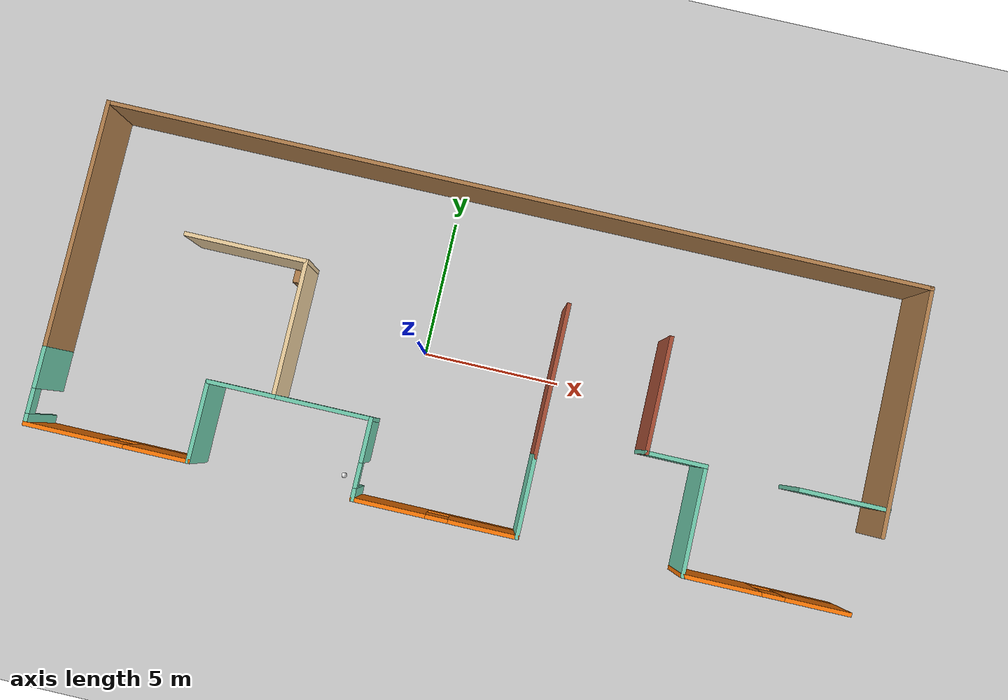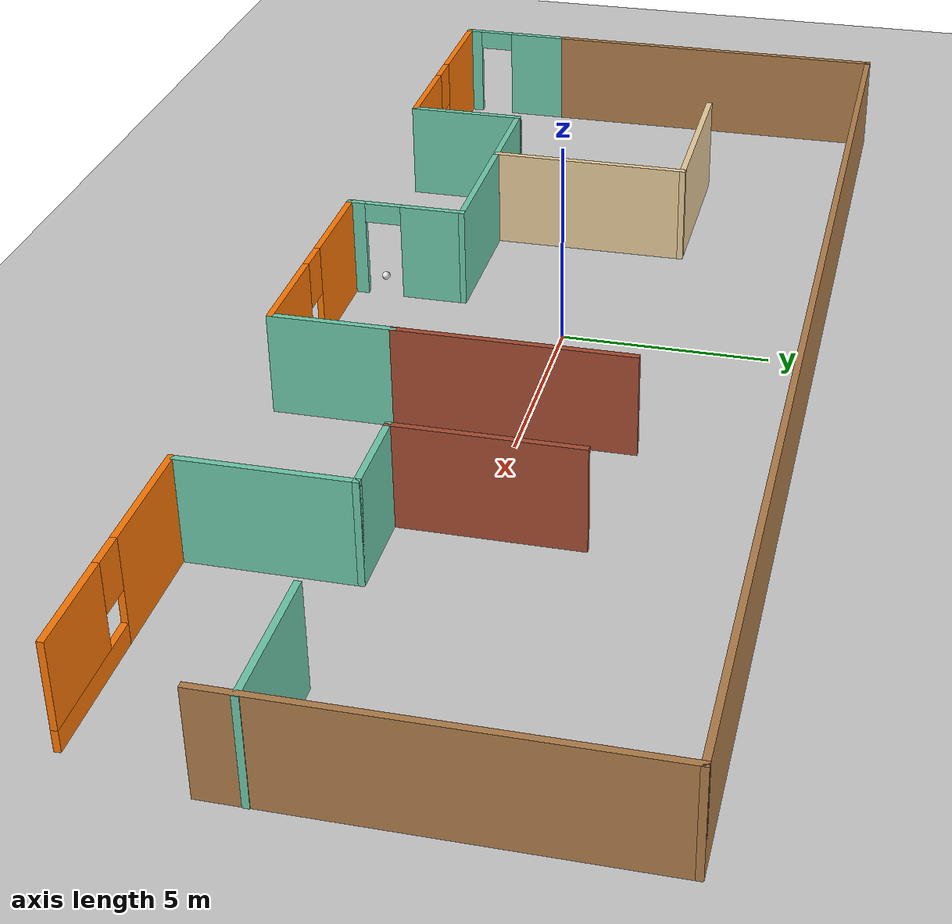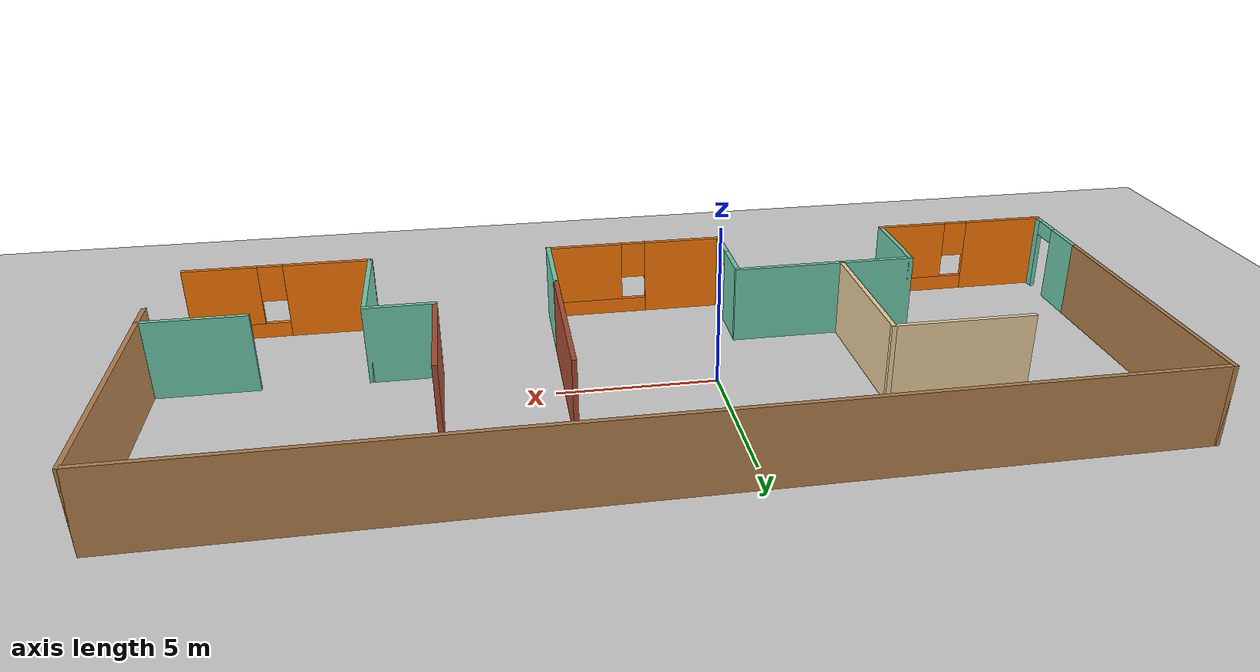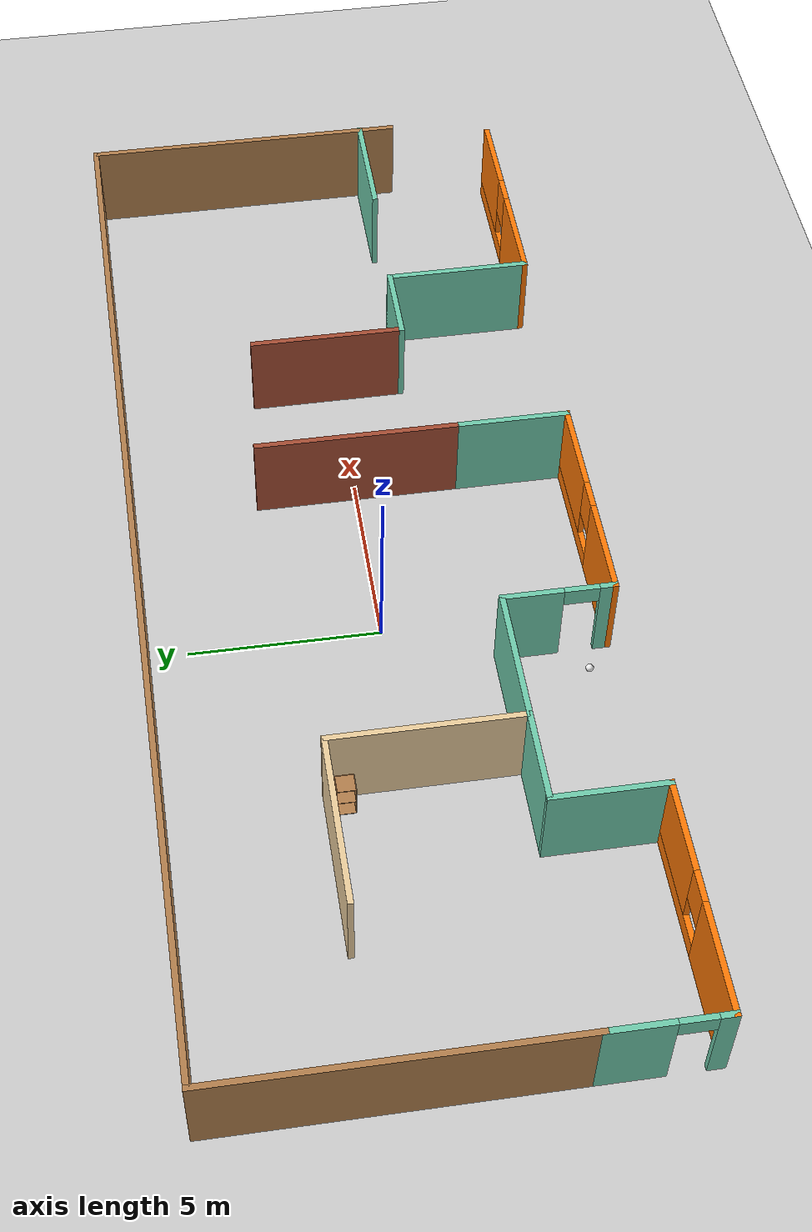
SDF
<sdf version="1.7">
 <world name="default">
  <model name="ground_plane">
   <static>1</static>
   <link name="link">
    <collision name="collision">
     <geometry><plane><normal>0 0 1</normal><size>100 100</size></plane></geometry>
     <surface>
      <contact><collide_bitmask>65535</collide_bitmask></contact>
      <friction><ode><mu>100</mu><mu2>50</mu2></ode></friction>
     </surface>
    </collision>
    <visual name="visual">
     <cast_shadows>0</cast_shadows>
     <geometry><plane><normal>0 0 1</normal><size>100 100</size></plane></geometry>
     <material>
      <script><uri>file://media/materials/scripts/gazebo.material</uri><name>Gazebo/Grey</name></script>
     </material>
    </visual>
   </link>
  </model>
  <model name="model_0">
   <pose>2.038 0.20634 0 0 -0 0</pose>
   <link name="Wall_22">
    <collision name="Wall_22_Collision">
     <geometry><box><size>9 0.15 2.5</size></box></geometry>
     <pose>0 0 1.25 0 -0 0</pose>
    </collision>
    <visual name="Wall_22_Visual">
     <pose>0 0 1.25 0 -0 0</pose>
     <geometry><box><size>9 0.15 2.5</size></box></geometry>
     <material>
      <script><uri>file://media/materials/scripts/gazebo.material</uri><name>Gazebo/Wood</name></script>
      <ambient>1 1 1 1</ambient>
     </material>
     <meta><layer>0</layer></meta>
    </visual>
    <pose>-14.9327 1.425 0 0 -0 1.5708</pose>
   </link>
   <link name="Wall_23">
    <collision name="Wall_23_Collision">
     <geometry><box><size>30 0.15 2.5</size></box></geometry>
     <pose>0 0 1.25 0 -0 0</pose>
    </collision>
    <visual name="Wall_23_Visual">
     <pose>0 0 1.25 0 -0 0</pose>
     <geometry><box><size>30 0.15 2.5</size></box></geometry>
     <material>
      <script><uri>file://media/materials/scripts/gazebo.material</uri><name>Gazebo/Wood</name></script>
      <ambient>1 1 1 1</ambient>
     </material>
     <meta><layer>0</layer></meta>
    </visual>
    <pose>-0.007664 5.85 0 0 -0 0</pose>
   </link>
   <link name="Wall_24">
    <collision name="Wall_24_Collision">
     <geometry><box><size>9 0.15 2.5</size></box></geometry>
     <pose>0 0 1.25 0 -0 0</pose>
    </collision>
    <visual name="Wall_24_Visual">
     <pose>0 0 1.25 0 -0 0</pose>
     <geometry><box><size>9 0.15 2.5</size></box></geometry>
     <material>
      <script><uri>file://media/materials/scripts/gazebo.material</uri><name>Gazebo/Wood</name></script>
      <ambient>1 1 1 1</ambient>
     </material>
     <meta><layer>0</layer></meta>
    </visual>
    <pose>14.9173 1.425 0 0 0 -1.5708</pose>
   </link>
   <link name="Wall_26">
    <pose>-14.9327 -4.425 0 0 0 -1.5708</pose>
    <visual name="Wall_26_Visual_0">
     <pose>-0.672153 0 1.25 0 -0 0</pose>
     <geometry><box><size>1.65569 0.15 2.5</size></box></geometry>
     <material>
      <script><uri>file://media/materials/scripts/gazebo.material</uri><name>Gazebo/Grey</name></script>
      <ambient>0.435294 0.796078 0.67451 1</ambient>
     </material>
     <meta><layer>0</layer></meta>
    </visual>
    <collision name="Wall_26_Collision_0">
     <geometry><box><size>1.65569 0.15 2.5</size></box></geometry>
     <pose>-0.672153 0 1.25 0 -0 0</pose>
    </collision>
    <visual name="Wall_26_Visual_1">
     <pose>1.27785 0 1.25 0 -0 0</pose>
     <geometry><box><size>0.444305 0.15 2.5</size></box></geometry>
     <material>
      <script><uri>file://media/materials/scripts/gazebo.material</uri><name>Gazebo/Grey</name></script>
      <ambient>0.435294 0.796078 0.67451 1</ambient>
     </material>
     <meta><layer>0</layer></meta>
    </visual>
    <collision name="Wall_26_Collision_1">
     <geometry><box><size>0.444305 0.15 2.5</size></box></geometry>
     <pose>1.27785 0 1.25 0 -0 0</pose>
    </collision>
    <visual name="Wall_26_Visual_2">
     <pose>0.605695 0 2.25 0 -0 0</pose>
     <geometry><box><size>0.9 0.15 0.5</size></box></geometry>
     <material>
      <script><uri>file://media/materials/scripts/gazebo.material</uri><name>Gazebo/Grey</name></script>
      <ambient>0.435294 0.796078 0.67451 1</ambient>
     </material>
     <meta><layer>0</layer></meta>
    </visual>
    <collision name="Wall_26_Collision_2">
     <geometry><box><size>0.9 0.15 0.5</size></box></geometry>
     <pose>0.605695 0 2.25 0 -0 0</pose>
    </collision>
   </link>
   <link name="Wall_27">
    <pose>-12.0077 -5.85 0 0 -0 0</pose>
    <visual name="Wall_27_Visual_0">
     <pose>-1.60488 0 1.25 0 -0 0</pose>
     <geometry><box><size>2.79023 0.15 2.5</size></box></geometry>
     <material>
      <script><uri>file://media/materials/scripts/gazebo.material</uri><name>Gazebo/Grey</name></script>
      <ambient>0.996078 0.47451 0.0196078 1</ambient>
     </material>
     <meta><layer>0</layer></meta>
    </visual>
    <collision name="Wall_27_Collision_0">
     <geometry><box><size>2.79023 0.15 2.5</size></box></geometry>
     <pose>-1.60488 0 1.25 0 -0 0</pose>
    </collision>
    <visual name="Wall_27_Visual_1">
     <pose>1.39512 0 0.25 0 -0 0</pose>
     <geometry><box><size>3.20977 0.15 0.5</size></box></geometry>
     <material>
      <script><uri>file://media/materials/scripts/gazebo.material</uri><name>Gazebo/Grey</name></script>
      <ambient>0.996078 0.47451 0.0196078 1</ambient>
     </material>
     <meta><layer>0</layer></meta>
    </visual>
    <collision name="Wall_27_Collision_1">
     <geometry><box><size>3.20977 0.15 0.5</size></box></geometry>
     <pose>1.39512 0 0.25 0 -0 0</pose>
    </collision>
    <visual name="Wall_27_Visual_2">
     <pose>1.79512 0 1.5 0 -0 0</pose>
     <geometry><box><size>2.40977 0.15 2</size></box></geometry>
     <material>
      <script><uri>file://media/materials/scripts/gazebo.material</uri><name>Gazebo/Grey</name></script>
      <ambient>0.996078 0.47451 0.0196078 1</ambient>
     </material>
     <meta><layer>0</layer></meta>
    </visual>
    <collision name="Wall_27_Collision_2">
     <geometry><box><size>2.40977 0.15 2</size></box></geometry>
     <pose>1.79512 0 1.5 0 -0 0</pose>
    </collision>
    <visual name="Wall_27_Visual_3">
     <pose>0.190231 0 1.9 0 -0 0</pose>
     <geometry><box><size>0.8 0.15 1.2</size></box></geometry>
     <material>
      <script><uri>file://media/materials/scripts/gazebo.material</uri><name>Gazebo/Grey</name></script>
      <ambient>0.996078 0.47451 0.0196078 1</ambient>
     </material>
     <meta><layer>0</layer></meta>
    </visual>
    <collision name="Wall_27_Collision_3">
     <geometry><box><size>0.8 0.15 1.2</size></box></geometry>
     <pose>0.190231 0 1.9 0 -0 0</pose>
    </collision>
   </link>
   <link name="Wall_29">
    <pose>-0.307663 -5.85 0 0 -0 0</pose>
    <visual name="Wall_29_Visual_0">
     <pose>-1.66874 0 1.25 0 -0 0</pose>
     <geometry><box><size>2.66252 0.15 2.5</size></box></geometry>
     <material>
      <script><uri>file://media/materials/scripts/gazebo.material</uri><name>Gazebo/Grey</name></script>
      <ambient>0.996078 0.47451 0.0196078 1</ambient>
     </material>
     <meta><layer>0</layer></meta>
    </visual>
    <collision name="Wall_29_Collision_0">
     <geometry><box><size>2.66252 0.15 2.5</size></box></geometry>
     <pose>-1.66874 0 1.25 0 -0 0</pose>
    </collision>
    <visual name="Wall_29_Visual_1">
     <pose>1.33126 0 0.25 0 -0 0</pose>
     <geometry><box><size>3.33748 0.15 0.5</size></box></geometry>
     <material>
      <script><uri>file://media/materials/scripts/gazebo.material</uri><name>Gazebo/Grey</name></script>
      <ambient>0.996078 0.47451 0.0196078 1</ambient>
     </material>
     <meta><layer>0</layer></meta>
    </visual>
    <collision name="Wall_29_Collision_1">
     <geometry><box><size>3.33748 0.15 0.5</size></box></geometry>
     <pose>1.33126 0 0.25 0 -0 0</pose>
    </collision>
    <visual name="Wall_29_Visual_2">
     <pose>1.73126 0 1.5 0 -0 0</pose>
     <geometry><box><size>2.53748 0.15 2</size></box></geometry>
     <material>
      <script><uri>file://media/materials/scripts/gazebo.material</uri><name>Gazebo/Grey</name></script>
      <ambient>0.996078 0.47451 0.0196078 1</ambient>
     </material>
     <meta><layer>0</layer></meta>
    </visual>
    <collision name="Wall_29_Collision_2">
     <geometry><box><size>2.53748 0.15 2</size></box></geometry>
     <pose>1.73126 0 1.5 0 -0 0</pose>
    </collision>
    <visual name="Wall_29_Visual_3">
     <pose>0.062517 0 1.9 0 -0 0</pose>
     <geometry><box><size>0.8 0.15 1.2</size></box></geometry>
     <material>
      <script><uri>file://media/materials/scripts/gazebo.material</uri><name>Gazebo/Grey</name></script>
      <ambient>0.996078 0.47451 0.0196078 1</ambient>
     </material>
     <meta><layer>0</layer></meta>
    </visual>
    <collision name="Wall_29_Collision_3">
     <geometry><box><size>0.8 0.15 1.2</size></box></geometry>
     <pose>0.062517 0 1.9 0 -0 0</pose>
    </collision>
   </link>
   <link name="Wall_31">
    <pose>11.3923 -5.85 0 0 -0 0</pose>
    <visual name="Wall_31_Visual_0">
     <pose>-1.57479 0 1.25 0 -0 0</pose>
     <geometry><box><size>2.85041 0.15 2.5</size></box></geometry>
     <material>
      <script><uri>file://media/materials/scripts/gazebo.material</uri><name>Gazebo/Grey</name></script>
      <ambient>0.996078 0.47451 0.0196078 1</ambient>
     </material>
     <meta><layer>0</layer></meta>
    </visual>
    <collision name="Wall_31_Collision_0">
     <geometry><box><size>2.85041 0.15 2.5</size></box></geometry>
     <pose>-1.57479 0 1.25 0 -0 0</pose>
    </collision>
    <visual name="Wall_31_Visual_1">
     <pose>1.42521 0 0.25 0 -0 0</pose>
     <geometry><box><size>3.14959 0.15 0.5</size></box></geometry>
     <material>
      <script><uri>file://media/materials/scripts/gazebo.material</uri><name>Gazebo/Grey</name></script>
      <ambient>0.996078 0.47451 0.0196078 1</ambient>
     </material>
     <meta><layer>0</layer></meta>
    </visual>
    <collision name="Wall_31_Collision_1">
     <geometry><box><size>3.14959 0.15 0.5</size></box></geometry>
     <pose>1.42521 0 0.25 0 -0 0</pose>
    </collision>
    <visual name="Wall_31_Visual_2">
     <pose>1.8252 0 1.5 0 -0 0</pose>
     <geometry><box><size>2.34959 0.15 2</size></box></geometry>
     <material>
      <script><uri>file://media/materials/scripts/gazebo.material</uri><name>Gazebo/Grey</name></script>
      <ambient>0.996078 0.47451 0.0196078 1</ambient>
     </material>
     <meta><layer>0</layer></meta>
    </visual>
    <collision name="Wall_31_Collision_2">
     <geometry><box><size>2.34959 0.15 2</size></box></geometry>
     <pose>1.8252 0 1.5 0 -0 0</pose>
    </collision>
    <visual name="Wall_31_Visual_3">
     <pose>0.25041 0 1.9 0 -0 0</pose>
     <geometry><box><size>0.8 0.15 1.2</size></box></geometry>
     <material>
      <script><uri>file://media/materials/scripts/gazebo.material</uri><name>Gazebo/Grey</name></script>
      <ambient>0.996078 0.47451 0.0196078 1</ambient>
     </material>
     <meta><layer>0</layer></meta>
    </visual>
    <collision name="Wall_31_Collision_3">
     <geometry><box><size>0.8 0.15 1.2</size></box></geometry>
     <pose>0.25041 0 1.9 0 -0 0</pose>
    </collision>
   </link>
   <link name="Wall_33">
    <pose>-3.23266 -4.425 0 0 -0 1.5708</pose>
    <visual name="Wall_33_Visual_0">
     <pose>-1.2647 0 1.25 0 -0 0</pose>
     <geometry><box><size>0.470606 0.15 2.5</size></box></geometry>
     <material>
      <script><uri>file://media/materials/scripts/gazebo.material</uri><name>Gazebo/Grey</name></script>
      <ambient>0.435294 0.796078 0.67451 1</ambient>
     </material>
     <meta><layer>0</layer></meta>
    </visual>
    <collision name="Wall_33_Collision_0">
     <geometry><box><size>0.470606 0.15 2.5</size></box></geometry>
     <pose>-1.2647 0 1.25 0 -0 0</pose>
    </collision>
    <visual name="Wall_33_Visual_1">
     <pose>0.685303 0 1.25 0 -0 0</pose>
     <geometry><box><size>1.62939 0.15 2.5</size></box></geometry>
     <material>
      <script><uri>file://media/materials/scripts/gazebo.material</uri><name>Gazebo/Grey</name></script>
      <ambient>0.435294 0.796078 0.67451 1</ambient>
     </material>
     <meta><layer>0</layer></meta>
    </visual>
    <collision name="Wall_33_Collision_1">
     <geometry><box><size>1.62939 0.15 2.5</size></box></geometry>
     <pose>0.685303 0 1.25 0 -0 0</pose>
    </collision>
    <visual name="Wall_33_Visual_2">
     <pose>-0.579394 0 2.25 0 -0 0</pose>
     <geometry><box><size>0.9 0.15 0.5</size></box></geometry>
     <material>
      <script><uri>file://media/materials/scripts/gazebo.material</uri><name>Gazebo/Grey</name></script>
      <ambient>0.435294 0.796078 0.67451 1</ambient>
     </material>
     <meta><layer>0</layer></meta>
    </visual>
    <collision name="Wall_33_Collision_2">
     <geometry><box><size>0.9 0.15 0.5</size></box></geometry>
     <pose>-0.579394 0 2.25 0 -0 0</pose>
    </collision>
   </link>
   <link name="Wall_35">
    <collision name="Wall_35_Collision">
     <geometry><box><size>3 0.15 2.5</size></box></geometry>
     <pose>0 0 1.25 0 -0 0</pose>
    </collision>
    <visual name="Wall_35_Visual">
     <pose>0 0 1.25 0 -0 0</pose>
     <geometry><box><size>3 0.15 2.5</size></box></geometry>
     <material>
      <script><uri>file://media/materials/scripts/gazebo.material</uri><name>Gazebo/Grey</name></script>
      <ambient>0.435294 0.796078 0.67451 1</ambient>
     </material>
     <meta><layer>0</layer></meta>
    </visual>
    <pose>2.61734 -4.425 0 0 -0 1.5708</pose>
   </link>
   <link name="Wall_39">
    <collision name="Wall_39_Collision">
     <geometry><box><size>3 0.15 2.5</size></box></geometry>
     <pose>0 0 1.25 0 -0 0</pose>
    </collision>
    <visual name="Wall_39_Visual">
     <pose>0 0 1.25 0 -0 0</pose>
     <geometry><box><size>3 0.15 2.5</size></box></geometry>
     <material>
      <script><uri>file://media/materials/scripts/gazebo.material</uri><name>Gazebo/Grey</name></script>
      <ambient>0.435294 0.796078 0.67451 1</ambient>
     </material>
     <meta><layer>0</layer></meta>
    </visual>
    <pose>-9.08266 -4.425 0 0 -0 1.5708</pose>
   </link>
   <link name="Wall_41">
    <collision name="Wall_41_Collision">
     <geometry><box><size>5 0.15 2.5</size></box></geometry>
     <pose>0 0 1.25 0 -0 0</pose>
    </collision>
    <visual name="Wall_41_Visual">
     <pose>0 0 1.25 0 -0 0</pose>
     <geometry><box><size>5 0.15 2.5</size></box></geometry>
     <material>
      <script><uri>file://media/materials/scripts/gazebo.material</uri><name>Gazebo/Grey</name></script>
      <ambient>0.921569 0.807843 0.615686 1</ambient>
     </material>
     <meta><layer>0</layer></meta>
    </visual>
    <pose>-6.73411 -0.54307 0 0 -0 1.5708</pose>
   </link>
   <link name="Wall_42">
    <collision name="Wall_42_Collision">
     <geometry><box><size>4.5 0.15 2.5</size></box></geometry>
     <pose>0 0 1.25 0 -0 0</pose>
    </collision>
    <visual name="Wall_42_Visual">
     <pose>0 0 1.25 0 -0 0</pose>
     <geometry><box><size>4.5 0.15 2.5</size></box></geometry>
     <material>
      <script><uri>file://media/materials/scripts/gazebo.material</uri><name>Gazebo/Grey</name></script>
      <ambient>0.921569 0.807843 0.615686 1</ambient>
     </material>
     <meta><layer>0</layer></meta>
    </visual>
    <pose>-8.90911 1.88193 0 0 -0 3.14159</pose>
   </link>
   <link name="Wall_44">
    <collision name="Wall_44_Collision">
     <geometry><box><size>2.5 0.15 2.5</size></box></geometry>
     <pose>0 0 1.25 0 -0 0</pose>
    </collision>
    <visual name="Wall_44_Visual">
     <pose>0 0 1.25 0 -0 0</pose>
     <geometry><box><size>2.5 0.15 2.5</size></box></geometry>
     <material>
      <script><uri>file://media/materials/scripts/gazebo.material</uri><name>Gazebo/Grey</name></script>
      <ambient>0.435294 0.796078 0.67451 1</ambient>
     </material>
     <meta><layer>0</layer></meta>
    </visual>
    <pose>-7.90766 -3 0 0 -0 0</pose>
   </link>
   <link name="Wall_45">
    <collision name="Wall_45_Collision">
     <geometry><box><size>3.65 0.15 2.5</size></box></geometry>
     <pose>0 0 1.25 0 -0 0</pose>
    </collision>
    <visual name="Wall_45_Visual">
     <pose>0 0 1.25 0 -0 0</pose>
     <geometry><box><size>3.65 0.15 2.5</size></box></geometry>
     <material>
      <script><uri>file://media/materials/scripts/gazebo.material</uri><name>Gazebo/Grey</name></script>
      <ambient>0.435294 0.796078 0.67451 1</ambient>
     </material>
     <meta><layer>0</layer></meta>
    </visual>
    <pose>-4.98266 -3 0 0 -0 0</pose>
   </link>
   <link name="Wall_76">
    <collision name="Wall_76_Collision">
     <geometry><box><size>4 0.15 2.5</size></box></geometry>
     <pose>0 0 1.25 0 -0 0</pose>
    </collision>
    <visual name="Wall_76_Visual">
     <pose>0 0 1.25 0 -0 0</pose>
     <geometry><box><size>4 0.15 2.5</size></box></geometry>
     <material>
      <script><uri>file://media/materials/scripts/gazebo.material</uri><name>Gazebo/Grey</name></script>
      <ambient>0.435294 0.796078 0.67451 1</ambient>
     </material>
     <meta><layer>0</layer></meta>
    </visual>
    <pose>8.46734 -3.925 0 0 -0 1.5708</pose>
   </link>
   <link name="Wall_78">
    <collision name="Wall_78_Collision">
     <geometry><box><size>4.25 0.15 2.5</size></box></geometry>
     <pose>0 0 1.25 0 -0 0</pose>
    </collision>
    <visual name="Wall_78_Visual">
     <pose>0 0 1.25 0 -0 0</pose>
     <geometry><box><size>4.25 0.15 2.5</size></box></geometry>
     <material>
      <script><uri>file://media/materials/scripts/gazebo.material</uri><name>Gazebo/Bricks</name></script>
      <ambient>1 1 1 1</ambient>
     </material>
     <meta><layer>0</layer></meta>
    </visual>
    <pose>6.36734 0.05 0 0 -0 1.5708</pose>
   </link>
   <link name="Wall_83">
    <collision name="Wall_83_Collision">
     <geometry><box><size>5.58 0.15 2.5</size></box></geometry>
     <pose>0 0 1.25 0 -0 0</pose>
    </collision>
    <visual name="Wall_83_Visual">
     <pose>0 0 1.25 0 -0 0</pose>
     <geometry><box><size>5.58 0.15 2.5</size></box></geometry>
     <material>
      <script><uri>file://media/materials/scripts/gazebo.material</uri><name>Gazebo/Bricks</name></script>
      <ambient>1 1 1 1</ambient>
     </material>
     <meta><layer>0</layer></meta>
    </visual>
    <pose>2.61734 -0.285 0 0 -0 1.5708</pose>
   </link>
   <link name="Wall_86">
    <collision name="Wall_86_Collision">
     <geometry><box><size>2.25 0.15 2.5</size></box></geometry>
     <pose>0 0 1.25 0 -0 0</pose>
    </collision>
    <visual name="Wall_86_Visual">
     <pose>0 0 1.25 0 -0 0</pose>
     <geometry><box><size>2.25 0.15 2.5</size></box></geometry>
     <material>
      <script><uri>file://media/materials/scripts/gazebo.material</uri><name>Gazebo/Grey</name></script>
      <ambient>0.435294 0.796078 0.67451 1</ambient>
     </material>
     <meta><layer>0</layer></meta>
    </visual>
    <pose>7.41734 -2 0 0 -0 0</pose>
   </link>
   <link name="Wall_88">
    <collision name="Wall_88_Collision">
     <geometry><box><size>3.25 0.15 2.5</size></box></geometry>
     <pose>0 0 1.25 0 -0 0</pose>
    </collision>
    <visual name="Wall_88_Visual">
     <pose>0 0 1.25 0 -0 0</pose>
     <geometry><box><size>3.25 0.15 2.5</size></box></geometry>
     <material>
      <script><uri>file://media/materials/scripts/gazebo.material</uri><name>Gazebo/Grey</name></script>
      <ambient>0.435294 0.796078 0.67451 1</ambient>
     </material>
     <meta><layer>0</layer></meta>
    </visual>
    <pose>13.3827 -2.0658 0 0 -0 3.14159</pose>
   </link>
   <static>1</static>
  </model>
  <model name="cabinet">
   <static>1</static>
   <link name="cabinet_bottom_plate">
    <inertial>
     <pose>0 0 -1 0 -0 0</pose>
     <inertia><ixx>2.05</ixx><ixy>0</ixy><ixz>0</ixz><iyy>2.05</iyy><iyz>0</iyz><izz>2.05</izz></inertia>
     <mass>25</mass>
    </inertial>
    <collision name="cabinet_bottom_plate_geom">
     <pose>0 0 0.01 0 -0 0</pose>
     <geometry><box><size>0.45 0.45 0.02</size></box></geometry>
    </collision>
    <visual name="cabinet_bottom_plate_geom_visual">
     <pose>0 0 0.01 0 -0 0</pose>
     <geometry><box><size>0.45 0.45 0.02</size></box></geometry>
     <material>
      <script><uri>file://media/materials/scripts/gazebo.material</uri><name>Gazebo/Wood</name></script>
     </material>
    </visual>
    <collision name="cabinet_bottom_plate_geom_cabinet_back_plate">
     <pose>0.235 0 0.51 0 -0 0</pose>
     <geometry><box><size>0.02 0.45 1.02</size></box></geometry>
    </collision>
    <visual name="cabinet_bottom_plate_geom_cabinet_back_plate_visual">
     <pose>0.235 0 0.51 0 -0 0</pose>
     <geometry><box><size>0.02 0.45 1.02</size></box></geometry>
     <material>
      <script><uri>file://media/materials/scripts/gazebo.material</uri><name>Gazebo/Wood</name></script>
     </material>
    </visual>
    <collision name="cabinet_bottom_plate_geom_cabinet_left_plate">
     <pose>0 0.235 0.51 0 -0 0</pose>
     <geometry><box><size>0.45 0.02 1.02</size></box></geometry>
    </collision>
    <visual name="cabinet_bottom_plate_geom_cabinet_left_plate_visual">
     <pose>0 0.235 0.51 0 -0 0</pose>
     <geometry><box><size>0.45 0.02 1.02</size></box></geometry>
     <material>
      <script><uri>file://media/materials/scripts/gazebo.material</uri><name>Gazebo/Wood</name></script>
     </material>
    </visual>
    <collision name="cabinet_bottom_plate_geom_cabinet_middle_plate">
     <pose>0 0 0.51 0 -0 0</pose>
     <geometry><box><size>0.45 0.45 0.02</size></box></geometry>
    </collision>
    <visual name="cabinet_bottom_plate_geom_cabinet_middle_plate_visual">
     <pose>0 0 0.51 0 -0 0</pose>
     <geometry><box><size>0.45 0.45 0.02</size></box></geometry>
     <material>
      <script><uri>file://media/materials/scripts/gazebo.material</uri><name>Gazebo/Wood</name></script>
     </material>
    </visual>
    <collision name="cabinet_bottom_plate_geom_cabinet_right_plate">
     <pose>0 -0.235 0.51 0 -0 0</pose>
     <geometry><box><size>0.45 0.02 1.02</size></box></geometry>
    </collision>
    <visual name="cabinet_bottom_plate_geom_cabinet_right_plate_visual">
     <pose>0 -0.235 0.51 0 -0 0</pose>
     <geometry><box><size>0.45 0.02 1.02</size></box></geometry>
     <material>
      <script><uri>file://media/materials/scripts/gazebo.material</uri><name>Gazebo/Wood</name></script>
     </material>
    </visual>
    <collision name="cabinet_bottom_plate_geom_cabinet_top_plate">
     <pose>0 0 1.01 0 -0 0</pose>
     <geometry><box><size>0.45 0.45 0.02</size></box></geometry>
    </collision>
    <visual name="cabinet_bottom_plate_geom_cabinet_top_plate_visual">
     <pose>0 0 1.01 0 -0 0</pose>
     <geometry><box><size>0.45 0.45 0.02</size></box></geometry>
     <material>
      <script><uri>file://media/materials/scripts/gazebo.material</uri><name>Gazebo/Wood</name></script>
     </material>
    </visual>
   </link>
   <pose>-5.05997 1.64912 0 0 -0 0</pose>
  </model>
  <model name="my_ball">
   <link name="link_0">
    <inertial>
     <mass>1</mass>
     <inertia><ixx>0.1</ixx><ixy>0</ixy><ixz>0</ixz><iyy>0.1</iyy><iyz>0</iyz><izz>0.1</izz></inertia>
    </inertial>
    <visual name="visual">
     <geometry><sphere><radius>0.1</radius></sphere></geometry>
     <material>
      <lighting>1</lighting>
      <script><uri>file://media/materials/scripts/gazebo.material</uri><name>Gazebo/White</name></script>
      <shader type="pixel"><normal_map>__default__</normal_map></shader>
      <ambient>1 1 1 1</ambient>
      <diffuse>1 1 1 1</diffuse>
      <specular>1 1 1 1</specular>
      <emissive>1 1 1 1</emissive>
     </material>
    </visual>
    <collision name="collision">
     <geometry><sphere><radius>0.1</radius></sphere></geometry>
     <surface>
      <friction>
       <ode><mu>1</mu><mu2>1</mu2><fdir1>0 0 0</fdir1><slip1>0</slip1><slip2>0</slip2></ode>
       <torsional>
        <coefficient>1</coefficient>
        <patch_radius>0</patch_radius>
        <surface_radius>0</surface_radius>
        <use_patch_radius>1</use_patch_radius>
        <ode><slip>0</slip></ode>
       </torsional>
      </friction>
      <bounce><restitution_coefficient>0</restitution_coefficient><threshold>1e+06</threshold></bounce>
      <contact>
       <collide_without_contact>0</collide_without_contact>
       <collide_without_contact_bitmask>1</collide_without_contact_bitmask>
       <collide_bitmask>1</collide_bitmask>
       <ode>
        <soft_cfm>0</soft_cfm>
        <soft_erp>0.2</soft_erp>
        <kp>1e+13</kp>
        <kd>1</kd>
        <max_vel>0.01</max_vel>
        <min_depth>0</min_depth>
       </ode>
       <bullet>
        <split_impulse>1</split_impulse>
        <split_impulse_penetration_threshold>-0.01</split_impulse_penetration_threshold>
        <soft_cfm>0</soft_cfm>
        <soft_erp>0.2</soft_erp>
        <kp>1e+13</kp>
        <kd>1</kd>
       </bullet>
      </contact>
     </surface>
    </collision>
   </link>
   <static>0</static>
   <pose>-1.919 -5.03825 0.1 0 -0 0</pose>
  </model>
 </world>
</sdf>
